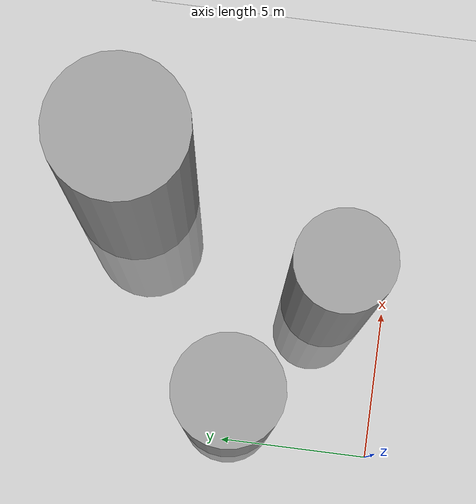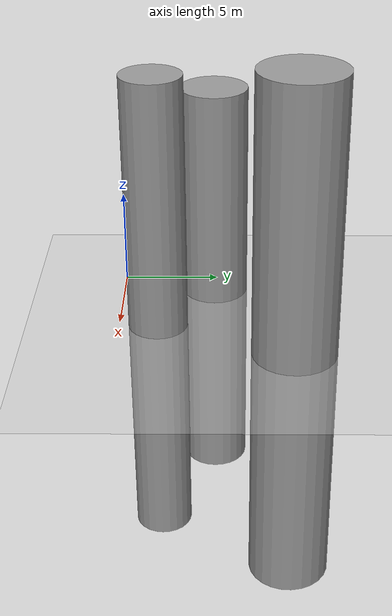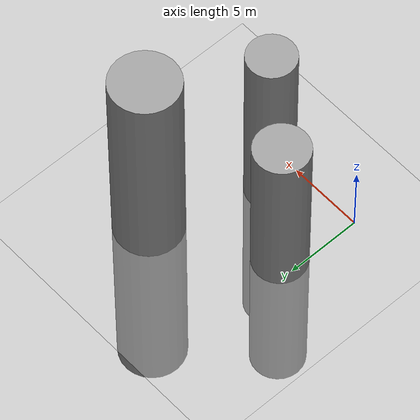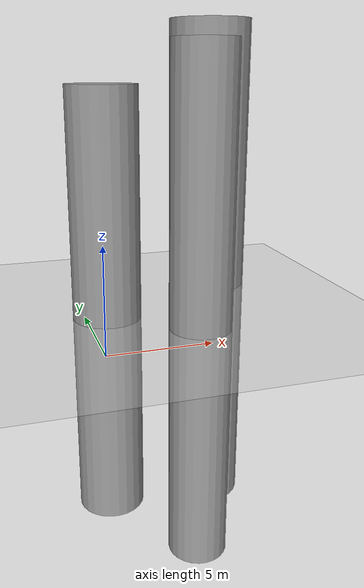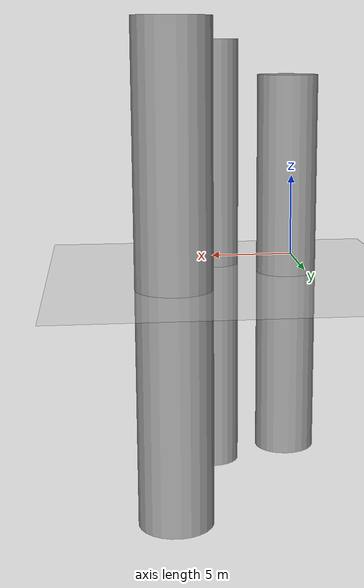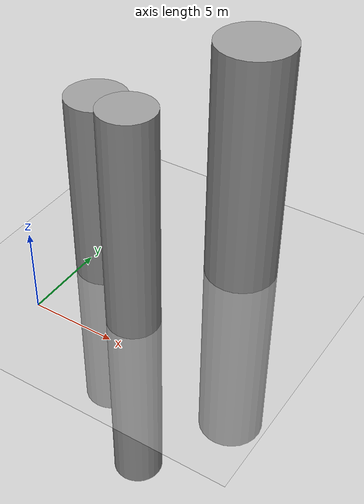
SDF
<sdf version="1.6">
 <world name="default">
  <light name="sun" type="directional">
   <pose>0 0 10 0 -0 0</pose>
   <diffuse>0.8 0.8 0.8 1</diffuse>
   <specular>0.2 0.2 0.2 1</specular>
   <attenuation>
    <range>1000</range>
    <constant>0.9</constant>
    <linear>0.01</linear>
    <quadratic>0.001</quadratic>
   </attenuation>
   <direction>-0.5 0.1 -0.9</direction>
  </light>
  <model name="ground_plane">
   <static>1</static>
   <link name="link">
    <collision name="collision">
     <geometry><plane><normal>0 0 1</normal><size>100 100</size></plane></geometry>
     <surface>
      <contact><collide_bitmask>65535</collide_bitmask></contact>
      <friction><ode><mu>100</mu><mu2>50</mu2></ode></friction>
     </surface>
    </collision>
    <visual name="visual">
     <cast_shadows>0</cast_shadows>
     <geometry><plane><normal>0 0 1</normal><size>100 100</size></plane></geometry>
     <material>
      <script><uri>file://media/materials/scripts/gazebo.material</uri><name>Gazebo/Grey</name></script>
     </material>
    </visual>
   </link>
  </model>
  <physics name="default_physics" default="0" type="ode">
   <ode>
    <solver>
     <type>quick</type>
     <iters>10</iters>
     <sor>1.3</sor>
     <use_dynamic_moi_rescaling>0</use_dynamic_moi_rescaling>
    </solver>
    <constraints>
     <cfm>0</cfm>
     <erp>0.2</erp>
     <contact_max_correcting_vel>100</contact_max_correcting_vel>
     <contact_surface_layer>0.001</contact_surface_layer>
    </constraints>
   </ode>
   <max_step_size>0.004</max_step_size>
   <real_time_factor>1</real_time_factor>
   <real_time_update_rate>250</real_time_update_rate>
  </physics>
  <gravity>0 0 -9.8066</gravity>
  <magnetic_field>6e-06 2.3e-05 -4.2e-05</magnetic_field>
  <atmosphere type="adiabatic"/>
  <scene><ambient>0.4 0.4 0.4 1</ambient><background>0.7 0.7 0.7 1</background><shadows>1</shadows></scene>
  <spherical_coordinates>
   <surface_model>EARTH_WGS84</surface_model>
   <latitude_deg>0</latitude_deg>
   <longitude_deg>0</longitude_deg>
   <elevation>0</elevation>
   <heading_deg>0</heading_deg>
  </spherical_coordinates>
  <model name="unit_cylinder">
   <pose>7.99998 9.00003 0.354866 0 -0 0.32218</pose>
   <link name="link">
    <inertial>
     <mass>3</mass>
     <inertia><ixx>0</ixx><ixy>0</ixy><ixz>0</ixz><iyy>0</iyy><iyz>0</iyz><izz>0</izz></inertia>
    </inertial>
    <collision name="collision">
     <geometry><cylinder><radius>2.18068</radius><length>0.709965</length></cylinder></geometry>
    </collision>
    <visual name="visual">
     <geometry><cylinder><radius>2.18068</radius><length>28.3986</length></cylinder></geometry>
     <material>
      <script><name>Gazebo/Grey</name><uri>file://media/materials/scripts/gazebo.material</uri></script>
     </material>
    </visual>
   </link>
  </model>
  <model name="unit_cylinder_0">
   <pose>1.13761 4.90815 0.277842 -5.1e-05 5.1e-05 -1.4e-05</pose>
   <link name="link">
    <inertial>
     <mass>1</mass>
     <inertia><ixx>0</ixx><ixy>0</ixy><ixz>0</ixz><iyy>0</iyy><iyz>0</iyz><izz>0</izz></inertia>
    </inertial>
    <collision name="collision">
     <geometry><cylinder><radius>1.73756</radius><length>0.55586</length></cylinder></geometry>
    </collision>
    <visual name="visual">
     <geometry><cylinder><radius>1.73756</radius><length>22.2344</length></cylinder></geometry>
     <material>
      <script><name>Gazebo/Grey</name><uri>file://media/materials/scripts/gazebo.material</uri></script>
     </material>
    </visual>
   </link>
  </model>
  <model name="unit_cylinder_1">
   <pose>5.16263 2.00907 0.325998 1.3e-05 -1.3e-05 -7e-06</pose>
   <link name="link">
    <inertial>
     <mass>1</mass>
     <inertia><ixx>0</ixx><ixy>0</ixy><ixz>0</ixz><iyy>0</iyy><iyz>0</iyz><izz>0</izz></inertia>
    </inertial>
    <collision name="collision">
     <geometry><cylinder><radius>1.54296</radius><length>0.65227</length></cylinder></geometry>
    </collision>
    <visual name="visual">
     <geometry><cylinder><radius>1.54296</radius><length>26.0908</length></cylinder></geometry>
     <material>
      <script><name>Gazebo/Grey</name><uri>file://media/materials/scripts/gazebo.material</uri></script>
     </material>
    </visual>
   </link>
  </model>
  <light name="user_point_light_0" type="point">
   <pose>4.82038 6.18903 1 0 -0 0</pose>
   <diffuse>0.5 0.5 0.5 1</diffuse>
   <specular>0.1 0.1 0.1 1</specular>
   <attenuation>
    <range>20</range>
    <constant>0.5</constant>
    <linear>0.01</linear>
    <quadratic>0.001</quadratic>
   </attenuation>
   <cast_shadows>0</cast_shadows>
   <direction>0 0 -1</direction>
  </light>
 </world>
</sdf>
